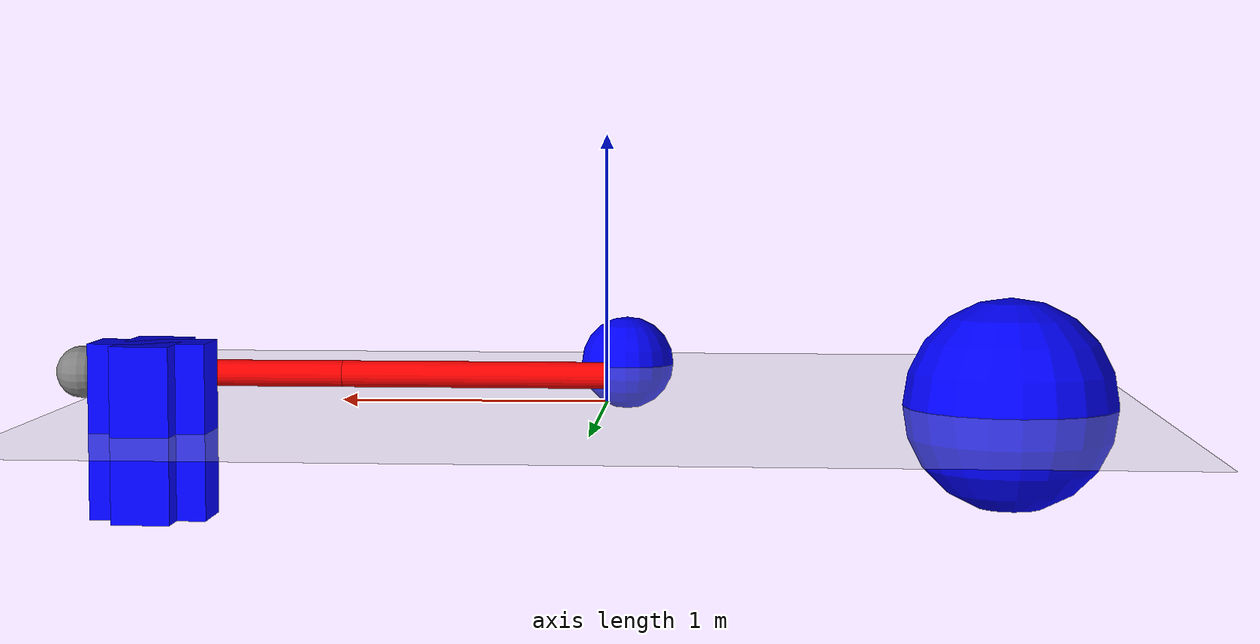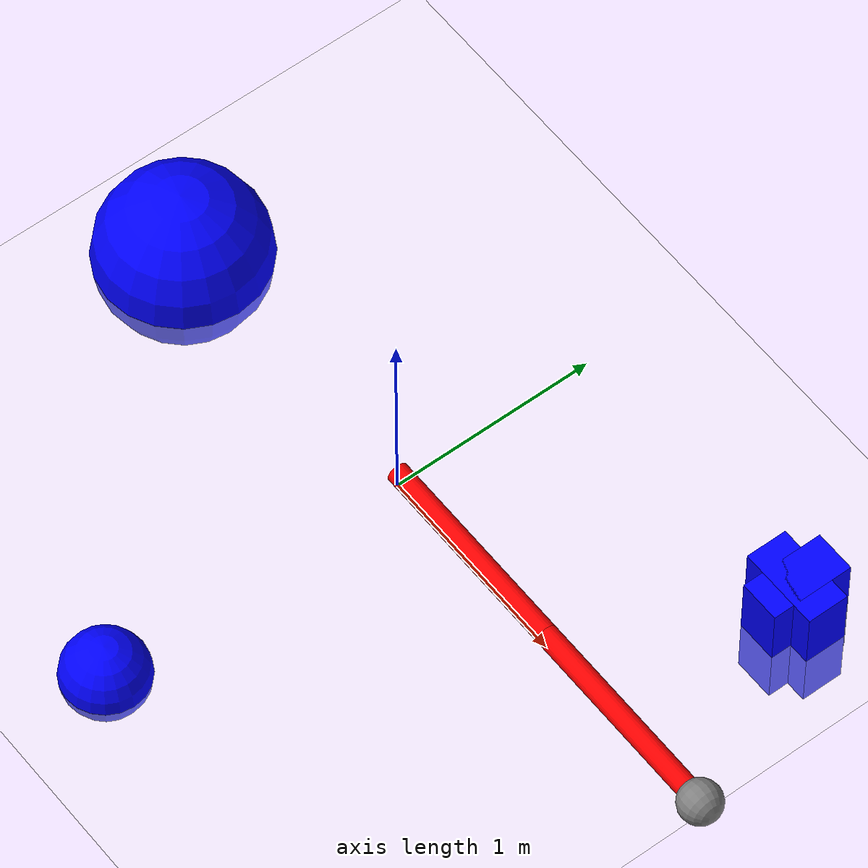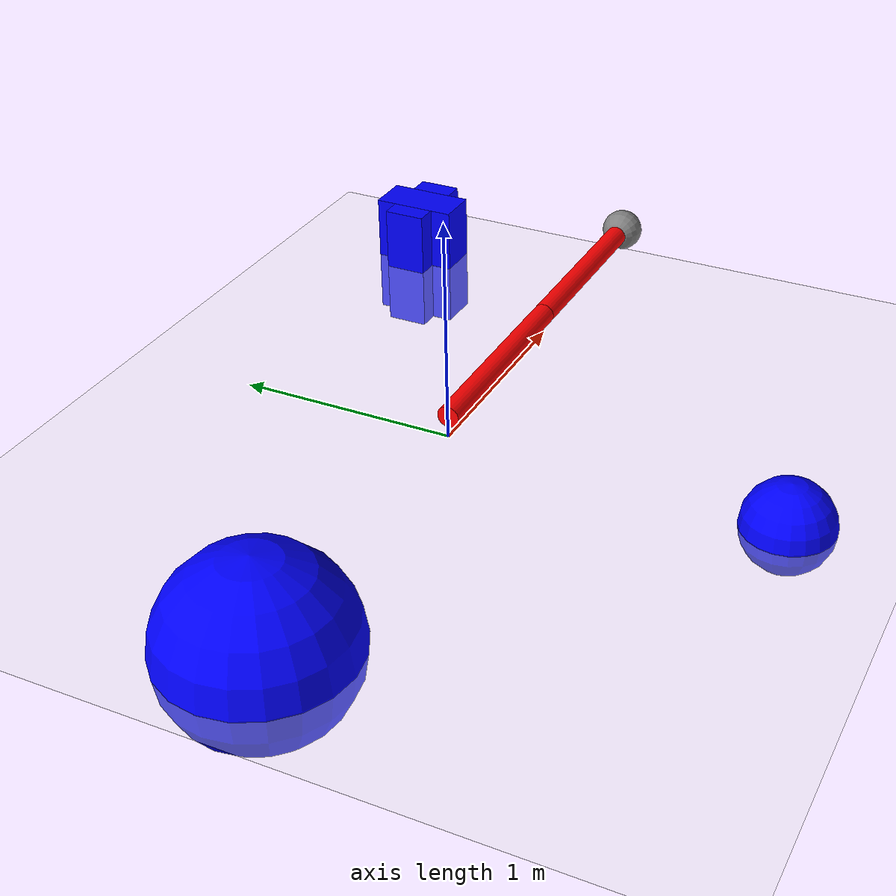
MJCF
<mujoco>
	<asset>
		<material name="red"   rgba="1 0 0 1"/>
		<material name="green" rgba="0 1 0 1"/>
		<material name="blue"  rgba="0 0 1 1"/>
		<material name="white" rgba="1 1 1 1"/>
		<material name="gray"  rgba=".5 .5 .5 1"/>
	</asset>

    <option collision="predefined"/>

    <worldbody>
        <light diffuse=".5 .5 .5" pos="0 0 10" dir="0 0 -1"/>
        <geom type="plane" size="2 2 0.1" rgba="1 1 1 1"/>

        <body name="edge 0" pos="0.5 0 0.1" euler="0 90 0">
            <joint name="joint 0" type="hinge" axis="-1 0 0" pos="0 0 -0.5"/>
            <geom name="geom edge 0" type="cylinder" size="0.05 0.5" material="red"/>
            <body name="edge 1" pos="0 0 1" euler="0 0 0">
                <joint name="joint 1" type="hinge" axis="-1 0 0" pos="0 0 -0.5"/>
                <geom name="geom edge 1" type="cylinder" size="0.05 0.5" material="red"/>
                <site name="tip" size="0.1" pos="0 0 0.5"/>
            </body>
        </body>

        <body name="edge 2" pos="0.5 0 0.1" euler="0 90 0">
            <joint name="joint 2" type="hinge" axis="-1 0 0" pos="0 0 -0.5"/>
            <geom type="cylinder" size="0.05 0.5" material="green"/>
            <body name="edge 3" pos="0 0 1" euler="0 0 0">
                <joint name="joint 3" type="hinge" axis="-1 0 0" pos="0 0 -0.5"/>
                <geom type="cylinder" size="0.05 0.5" material="green"/>
            </body>
        </body>

        <body name="obstacle 0">
            <geom name="geom obstacle 0" type="box" size="0.1 0.2 0.3" pos="1.5 0.9 0.0" material="blue"/>
        </body>
        <body name="obstacle 1">
            <geom name="geom obstacle 1" type="sphere" size="0.2" pos="0.0 -1.5 0.0" material="blue"/>
        </body>
        <body name="obstacle 2">
            <geom name="geom obstacle 2" type="sphere" size="0.4" pos="-1.5 0.0 0.0" material="blue"/>
        </body>
        <body name="obstacle 3">
            <geom name="geom obstacle 3" type="box" size="0.2 0.1 0.3" pos="1.5 0.9 0.0" material="blue"/>
        </body>

    </worldbody>

    <contact>
        <pair geom1="geom edge 0" geom2="geom obstacle 0"/>
        <pair geom1="geom edge 0" geom2="geom obstacle 1"/>
        <pair geom1="geom edge 0" geom2="geom obstacle 2"/>
        <pair geom1="geom edge 0" geom2="geom obstacle 3"/>
        <pair geom1="geom edge 0" geom2="geom obstacle 4"/>
        <pair geom1="geom edge 0" geom2="geom obstacle 5"/>
        <pair geom1="geom edge 1" geom2="geom obstacle 0"/>
        <pair geom1="geom edge 1" geom2="geom obstacle 1"/>
        <pair geom1="geom edge 1" geom2="geom obstacle 2"/>
        <pair geom1="geom edge 1" geom2="geom obstacle 3"/>
        <pair geom1="geom edge 1" geom2="geom obstacle 4"/>
        <pair geom1="geom edge 1" geom2="geom obstacle 5"/>
    </contact>

    <sensor>
      <framepos objtype="site" objname="tip"/>
    </sensor>
</mujoco>
